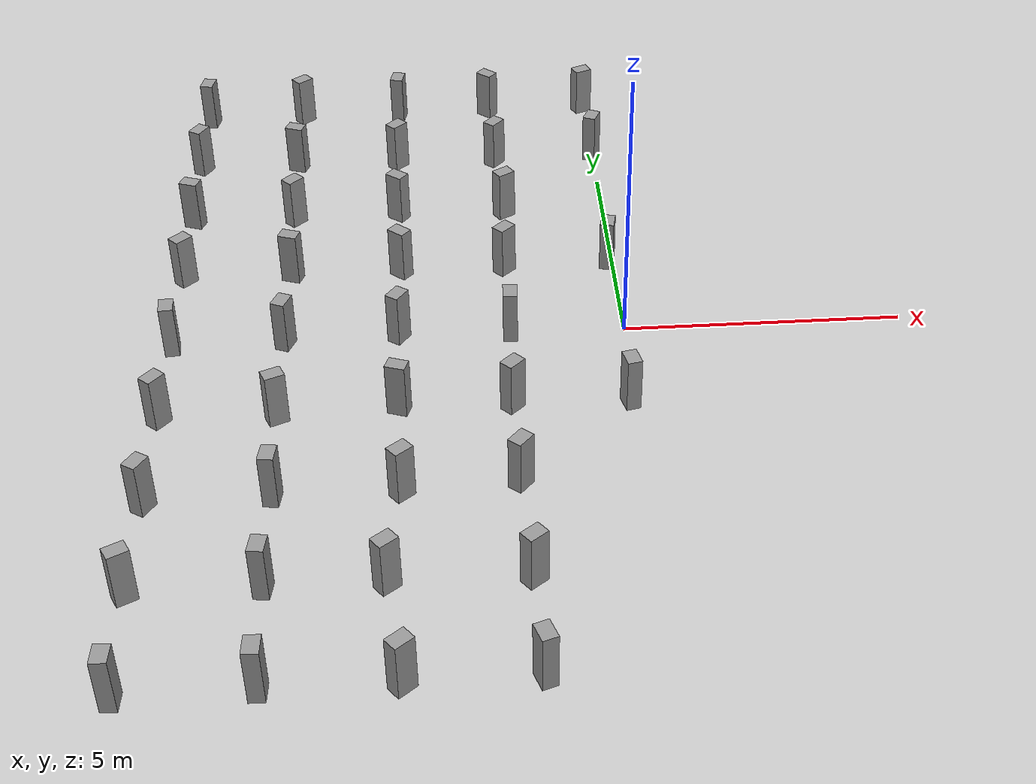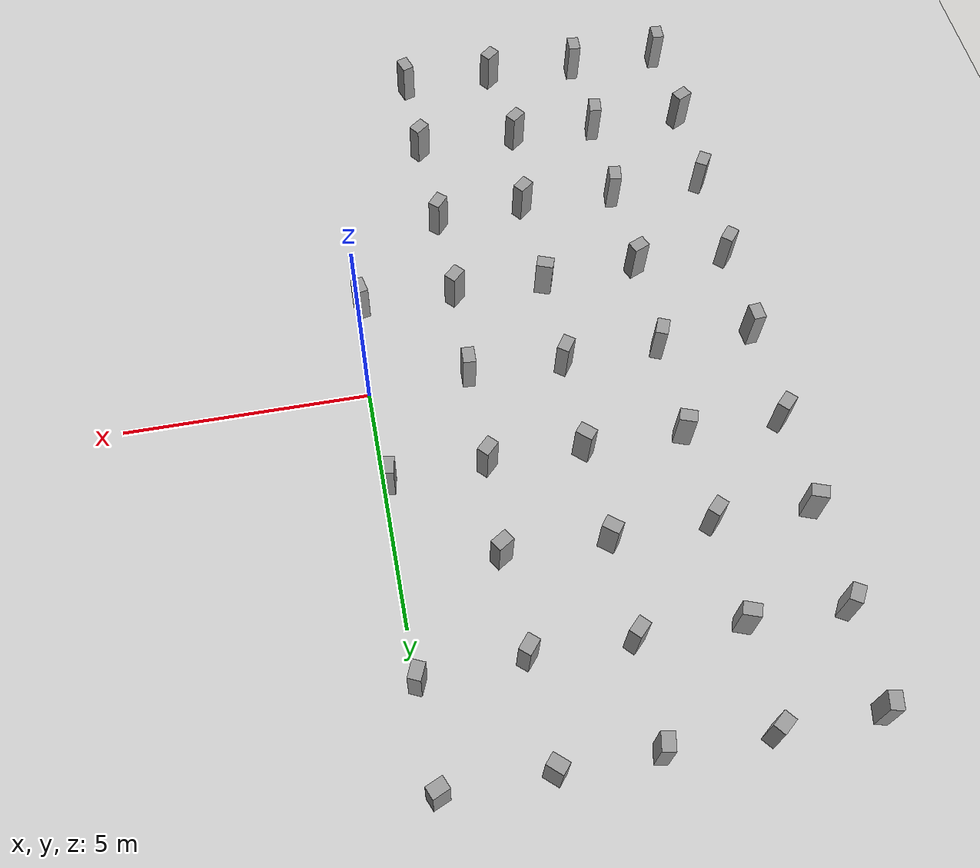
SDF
<sdf version="1.6">
 <world name="default">
  <model name="ground_plane">
   <static>1</static>
   <link name="link">
    <collision name="collision">
     <geometry><plane><normal>0 0 1</normal><size>100 100</size></plane></geometry>
     <surface><friction><ode><mu>100</mu><mu2>50</mu2></ode></friction></surface>
    </collision>
    <visual name="visual">
     <cast_shadows>0</cast_shadows>
     <geometry><plane><normal>0 0 1</normal><size>100 100</size></plane></geometry>
     <material>
      <script><uri>file://media/materials/scripts/gazebo.material</uri><name>Gazebo/Grey</name></script>
     </material>
    </visual>
   </link>
  </model>
  <model name="unit_box_0">
   <pose>-2.06126 2.0132 0.5 -1e-06 2e-06 0.772536</pose>
   <link name="link">
    <inertial>
     <mass>1</mass>
     <inertia>
      <ixx>0.166667</ixx>
      <ixy>0</ixy>
      <ixz>0</ixz>
      <iyy>0.166667</iyy>
      <iyz>0</iyz>
      <izz>0.166667</izz>
     </inertia>
    </inertial>
    <collision name="collision"><geometry><box><size>0.350929 0.254556 1</size></box></geometry></collision>
    <visual name="visual">
     <geometry><box><size>0.350929 0.254556 1</size></box></geometry>
     <material>
      <script><name>Gazebo/Grey</name><uri>file://media/materials/scripts/gazebo.material</uri></script>
     </material>
    </visual>
   </link>
  </model>
  <model name="unit_box_0_clone">
   <pose>-2.05591 -0.03587 0.499999 -3e-06 2e-06 -1.61428</pose>
   <link name="link">
    <inertial>
     <mass>1</mass>
     <inertia>
      <ixx>0.166667</ixx>
      <ixy>0</ixy>
      <ixz>0</ixz>
      <iyy>0.166667</iyy>
      <iyz>0</iyz>
      <izz>0.166667</izz>
     </inertia>
    </inertial>
    <collision name="collision"><geometry><box><size>0.350929 0.254556 1</size></box></geometry></collision>
    <visual name="visual">
     <geometry><box><size>0.350929 0.254556 1</size></box></geometry>
     <material>
      <script><name>Gazebo/Grey</name><uri>file://media/materials/scripts/gazebo.material</uri></script>
     </material>
    </visual>
   </link>
  </model>
  <model name="unit_box_0_clone_0">
   <pose>-2.12172 -2.02535 0.5 0 -2e-06 0.766426</pose>
   <link name="link">
    <inertial>
     <mass>1</mass>
     <inertia>
      <ixx>0.166667</ixx>
      <ixy>0</ixy>
      <ixz>0</ixz>
      <iyy>0.166667</iyy>
      <iyz>0</iyz>
      <izz>0.166667</izz>
     </inertia>
    </inertial>
    <collision name="collision"><geometry><box><size>0.350929 0.254556 1</size></box></geometry></collision>
    <visual name="visual">
     <geometry><box><size>0.350929 0.254556 1</size></box></geometry>
     <material>
      <script><name>Gazebo/Grey</name><uri>file://media/materials/scripts/gazebo.material</uri></script>
     </material>
    </visual>
   </link>
  </model>
  <model name="unit_box_0_clone_1">
   <pose>-0.126811 -2.064 0.499999 1e-06 3e-06 -1.35838</pose>
   <link name="link">
    <inertial>
     <mass>1</mass>
     <inertia>
      <ixx>0.166667</ixx>
      <ixy>0</ixy>
      <ixz>0</ixz>
      <iyy>0.166667</iyy>
      <iyz>0</iyz>
      <izz>0.166667</izz>
     </inertia>
    </inertial>
    <collision name="collision"><geometry><box><size>0.350929 0.254556 1</size></box></geometry></collision>
    <visual name="visual">
     <geometry><box><size>0.350929 0.254556 1</size></box></geometry>
     <material>
      <script><name>Gazebo/Grey</name><uri>file://media/materials/scripts/gazebo.material</uri></script>
     </material>
    </visual>
   </link>
  </model>
  <model name="unit_box_0_clone_5">
   <pose>-0.107164 2.07934 0.5 1e-06 -2e-06 1.37177</pose>
   <link name="link">
    <inertial>
     <mass>1</mass>
     <inertia>
      <ixx>0.166667</ixx>
      <ixy>0</ixy>
      <ixz>0</ixz>
      <iyy>0.166667</iyy>
      <iyz>0</iyz>
      <izz>0.166667</izz>
     </inertia>
    </inertial>
    <collision name="collision"><geometry><box><size>0.350929 0.254556 1</size></box></geometry></collision>
    <visual name="visual">
     <geometry><box><size>0.350929 0.254556 1</size></box></geometry>
     <material>
      <script><name>Gazebo/Grey</name><uri>file://media/materials/scripts/gazebo.material</uri></script>
     </material>
    </visual>
   </link>
  </model>
  <model name="unit_box_0_clone_0_clone">
   <pose>-4.0407 -1.97073 0.5 -1e-06 2e-06 -0.343912</pose>
   <link name="link">
    <inertial>
     <mass>1</mass>
     <inertia>
      <ixx>0.166667</ixx>
      <ixy>0</ixy>
      <ixz>0</ixz>
      <iyy>0.166667</iyy>
      <iyz>0</iyz>
      <izz>0.166667</izz>
     </inertia>
    </inertial>
    <collision name="collision"><geometry><box><size>0.350929 0.254556 1</size></box></geometry></collision>
    <visual name="visual">
     <geometry><box><size>0.350929 0.254556 1</size></box></geometry>
     <material>
      <script><name>Gazebo/Grey</name><uri>file://media/materials/scripts/gazebo.material</uri></script>
     </material>
    </visual>
   </link>
  </model>
  <model name="unit_box_0_clone_0_clone_clone">
   <pose>-4.03905 0.039817 0.5 -1e-06 1e-06 0.948976</pose>
   <link name="link">
    <inertial>
     <mass>1</mass>
     <inertia>
      <ixx>0.166667</ixx>
      <ixy>0</ixy>
      <ixz>0</ixz>
      <iyy>0.166667</iyy>
      <iyz>0</iyz>
      <izz>0.166667</izz>
     </inertia>
    </inertial>
    <collision name="collision"><geometry><box><size>0.350929 0.254556 1</size></box></geometry></collision>
    <visual name="visual">
     <geometry><box><size>0.350929 0.254556 1</size></box></geometry>
     <material>
      <script><name>Gazebo/Grey</name><uri>file://media/materials/scripts/gazebo.material</uri></script>
     </material>
    </visual>
   </link>
  </model>
  <model name="unit_box_0_clone_0_clone_clone_0">
   <pose>-3.99445 2.03442 0.499999 2e-06 -2e-06 -0.719633</pose>
   <link name="link">
    <inertial>
     <mass>1</mass>
     <inertia>
      <ixx>0.166667</ixx>
      <ixy>0</ixy>
      <ixz>0</ixz>
      <iyy>0.166667</iyy>
      <iyz>0</iyz>
      <izz>0.166667</izz>
     </inertia>
    </inertial>
    <collision name="collision"><geometry><box><size>0.350929 0.254556 1</size></box></geometry></collision>
    <visual name="visual">
     <geometry><box><size>0.350929 0.254556 1</size></box></geometry>
     <material>
      <script><name>Gazebo/Grey</name><uri>file://media/materials/scripts/gazebo.material</uri></script>
     </material>
    </visual>
   </link>
  </model>
  <model name="unit_box_0_clone_0_clone_clone_2">
   <pose>-4.04009 4.00348 0.499999 -3e-06 2e-06 -0.67289</pose>
   <link name="link">
    <inertial>
     <mass>1</mass>
     <inertia>
      <ixx>0.166667</ixx>
      <ixy>0</ixy>
      <ixz>0</ixz>
      <iyy>0.166667</iyy>
      <iyz>0</iyz>
      <izz>0.166667</izz>
     </inertia>
    </inertial>
    <collision name="collision"><geometry><box><size>0.350929 0.254556 1</size></box></geometry></collision>
    <visual name="visual">
     <geometry><box><size>0.350929 0.254556 1</size></box></geometry>
     <material>
      <script><name>Gazebo/Grey</name><uri>file://media/materials/scripts/gazebo.material</uri></script>
     </material>
    </visual>
   </link>
  </model>
  <model name="unit_box_0_clone_0_clone_clone_3">
   <pose>-1.96683 3.94969 0.499999 2e-06 2e-06 0.554806</pose>
   <link name="link">
    <inertial>
     <mass>1</mass>
     <inertia>
      <ixx>0.166667</ixx>
      <ixy>0</ixy>
      <ixz>0</ixz>
      <iyy>0.166667</iyy>
      <iyz>0</iyz>
      <izz>0.166667</izz>
     </inertia>
    </inertial>
    <collision name="collision"><geometry><box><size>0.350929 0.254556 1</size></box></geometry></collision>
    <visual name="visual">
     <geometry><box><size>0.350929 0.254556 1</size></box></geometry>
     <material>
      <script><name>Gazebo/Grey</name><uri>file://media/materials/scripts/gazebo.material</uri></script>
     </material>
    </visual>
   </link>
  </model>
  <model name="unit_box_0_clone_0_clone_clone_7">
   <pose>-3.99587 -4.06663 0.5 0 2e-06 0.673963</pose>
   <link name="link">
    <inertial>
     <mass>1</mass>
     <inertia>
      <ixx>0.166667</ixx>
      <ixy>0</ixy>
      <ixz>0</ixz>
      <iyy>0.166667</iyy>
      <iyz>0</iyz>
      <izz>0.166667</izz>
     </inertia>
    </inertial>
    <collision name="collision"><geometry><box><size>0.350929 0.254556 1</size></box></geometry></collision>
    <visual name="visual">
     <geometry><box><size>0.350929 0.254556 1</size></box></geometry>
     <material>
      <script><name>Gazebo/Grey</name><uri>file://media/materials/scripts/gazebo.material</uri></script>
     </material>
    </visual>
   </link>
  </model>
  <model name="unit_box_0_clone_0_clone_clone_8">
   <pose>-2.09802 -3.96334 0.5 -1e-06 1e-06 0.856131</pose>
   <link name="link">
    <inertial>
     <mass>1</mass>
     <inertia>
      <ixx>0.166667</ixx>
      <ixy>0</ixy>
      <ixz>0</ixz>
      <iyy>0.166667</iyy>
      <iyz>0</iyz>
      <izz>0.166667</izz>
     </inertia>
    </inertial>
    <collision name="collision"><geometry><box><size>0.350929 0.254556 1</size></box></geometry></collision>
    <visual name="visual">
     <geometry><box><size>0.350929 0.254556 1</size></box></geometry>
     <material>
      <script><name>Gazebo/Grey</name><uri>file://media/materials/scripts/gazebo.material</uri></script>
     </material>
    </visual>
   </link>
  </model>
  <model name="unit_box_0_clone_0_clone_clone_13">
   <pose>-2.02858 -6.08392 0.5 0 -2e-06 0.653948</pose>
   <link name="link">
    <inertial>
     <mass>1</mass>
     <inertia>
      <ixx>0.166667</ixx>
      <ixy>0</ixy>
      <ixz>0</ixz>
      <iyy>0.166667</iyy>
      <iyz>0</iyz>
      <izz>0.166667</izz>
     </inertia>
    </inertial>
    <collision name="collision"><geometry><box><size>0.350929 0.254556 1</size></box></geometry></collision>
    <visual name="visual">
     <geometry><box><size>0.350929 0.254556 1</size></box></geometry>
     <material>
      <script><name>Gazebo/Grey</name><uri>file://media/materials/scripts/gazebo.material</uri></script>
     </material>
    </visual>
   </link>
  </model>
  <model name="unit_box_0_clone_0_clone_clone_11_clone_0">
   <pose>-6.05663 -6.01449 0.5 1e-06 -2e-06 1.42927</pose>
   <link name="link">
    <inertial>
     <mass>1</mass>
     <inertia>
      <ixx>0.166667</ixx>
      <ixy>0</ixy>
      <ixz>0</ixz>
      <iyy>0.166667</iyy>
      <iyz>0</iyz>
      <izz>0.166667</izz>
     </inertia>
    </inertial>
    <collision name="collision"><geometry><box><size>0.350929 0.254556 1</size></box></geometry></collision>
    <visual name="visual">
     <geometry><box><size>0.350929 0.254556 1</size></box></geometry>
     <material>
      <script><name>Gazebo/Grey</name><uri>file://media/materials/scripts/gazebo.material</uri></script>
     </material>
    </visual>
   </link>
  </model>
  <model name="unit_box_0_clone_0_clone_clone_10_clone">
   <pose>-0.034356 6.04421 0.499999 -2e-06 2e-06 1.16006</pose>
   <link name="link">
    <inertial>
     <mass>1</mass>
     <inertia>
      <ixx>0.166667</ixx>
      <ixy>0</ixy>
      <ixz>0</ixz>
      <iyy>0.166667</iyy>
      <iyz>0</iyz>
      <izz>0.166667</izz>
     </inertia>
    </inertial>
    <collision name="collision"><geometry><box><size>0.350929 0.254556 1</size></box></geometry></collision>
    <visual name="visual">
     <geometry><box><size>0.350929 0.254556 1</size></box></geometry>
     <material>
      <script><name>Gazebo/Grey</name><uri>file://media/materials/scripts/gazebo.material</uri></script>
     </material>
    </visual>
   </link>
  </model>
  <model name="unit_box_0_clone_0_clone_clone_8_clone_0">
   <pose>-2.0601 5.93381 0.5 1e-06 -2e-06 0.856199</pose>
   <link name="link">
    <inertial>
     <mass>1</mass>
     <inertia>
      <ixx>0.166667</ixx>
      <ixy>0</ixy>
      <ixz>0</ixz>
      <iyy>0.166667</iyy>
      <iyz>0</iyz>
      <izz>0.166667</izz>
     </inertia>
    </inertial>
    <collision name="collision"><geometry><box><size>0.350929 0.254556 1</size></box></geometry></collision>
    <visual name="visual">
     <geometry><box><size>0.350929 0.254556 1</size></box></geometry>
     <material>
      <script><name>Gazebo/Grey</name><uri>file://media/materials/scripts/gazebo.material</uri></script>
     </material>
    </visual>
   </link>
  </model>
  <model name="unit_box_0_clone_0_clone_2">
   <pose>-4.0507 5.96912 0.5 2e-06 -1e-06 0.766392</pose>
   <link name="link">
    <inertial>
     <mass>1</mass>
     <inertia>
      <ixx>0.166667</ixx>
      <ixy>0</ixy>
      <ixz>0</ixz>
      <iyy>0.166667</iyy>
      <iyz>0</iyz>
      <izz>0.166667</izz>
     </inertia>
    </inertial>
    <collision name="collision"><geometry><box><size>0.350929 0.254556 1</size></box></geometry></collision>
    <visual name="visual">
     <geometry><box><size>0.350929 0.254556 1</size></box></geometry>
     <material>
      <script><name>Gazebo/Grey</name><uri>file://media/materials/scripts/gazebo.material</uri></script>
     </material>
    </visual>
   </link>
  </model>
  <model name="unit_box_0_clone_0_clone_clone_15_clone">
   <pose>-6.09579 6.00418 0.499999 1e-06 -3e-06 -0.343825</pose>
   <link name="link">
    <inertial>
     <mass>1</mass>
     <inertia>
      <ixx>0.166667</ixx>
      <ixy>0</ixy>
      <ixz>0</ixz>
      <iyy>0.166667</iyy>
      <iyz>0</iyz>
      <izz>0.166667</izz>
     </inertia>
    </inertial>
    <collision name="collision"><geometry><box><size>0.350929 0.254556 1</size></box></geometry></collision>
    <visual name="visual">
     <geometry><box><size>0.350929 0.254556 1</size></box></geometry>
     <material>
      <script><name>Gazebo/Grey</name><uri>file://media/materials/scripts/gazebo.material</uri></script>
     </material>
    </visual>
   </link>
  </model>
  <model name="unit_box_0_clone_8">
   <pose>-6.05766 3.97861 0.5 -1e-06 -2e-06 0.772575</pose>
   <link name="link">
    <inertial>
     <mass>1</mass>
     <inertia>
      <ixx>0.166667</ixx>
      <ixy>0</ixy>
      <ixz>0</ixz>
      <iyy>0.166667</iyy>
      <iyz>0</iyz>
      <izz>0.166667</izz>
     </inertia>
    </inertial>
    <collision name="collision"><geometry><box><size>0.350929 0.254556 1</size></box></geometry></collision>
    <visual name="visual">
     <geometry><box><size>0.350929 0.254556 1</size></box></geometry>
     <material>
      <script><name>Gazebo/Grey</name><uri>file://media/materials/scripts/gazebo.material</uri></script>
     </material>
    </visual>
   </link>
  </model>
  <model name="unit_box_0_clone_0_clone_clone_4_clone">
   <pose>-6.02399 2.04626 0.5 -1e-06 1e-06 -0.34383</pose>
   <link name="link">
    <inertial>
     <mass>1</mass>
     <inertia>
      <ixx>0.166667</ixx>
      <ixy>0</ixy>
      <ixz>0</ixz>
      <iyy>0.166667</iyy>
      <iyz>0</iyz>
      <izz>0.166667</izz>
     </inertia>
    </inertial>
    <collision name="collision"><geometry><box><size>0.350929 0.254556 1</size></box></geometry></collision>
    <visual name="visual">
     <geometry><box><size>0.350929 0.254556 1</size></box></geometry>
     <material>
      <script><name>Gazebo/Grey</name><uri>file://media/materials/scripts/gazebo.material</uri></script>
     </material>
    </visual>
   </link>
  </model>
  <model name="unit_box_0_clone_4_clone">
   <pose>-6.05266 -0.012394 0.5 1e-06 -2e-06 1.17598</pose>
   <link name="link">
    <inertial>
     <mass>1</mass>
     <inertia>
      <ixx>0.166667</ixx>
      <ixy>0</ixy>
      <ixz>0</ixz>
      <iyy>0.166667</iyy>
      <iyz>0</iyz>
      <izz>0.166667</izz>
     </inertia>
    </inertial>
    <collision name="collision"><geometry><box><size>0.350929 0.254556 1</size></box></geometry></collision>
    <visual name="visual">
     <geometry><box><size>0.350929 0.254556 1</size></box></geometry>
     <material>
      <script><name>Gazebo/Grey</name><uri>file://media/materials/scripts/gazebo.material</uri></script>
     </material>
    </visual>
   </link>
  </model>
  <model name="unit_box_0_clone_0_clone_clone_5_clone">
   <pose>-6.08131 -2.07249 0.5 2e-06 1e-06 0.401994</pose>
   <link name="link">
    <inertial>
     <mass>1</mass>
     <inertia>
      <ixx>0.166667</ixx>
      <ixy>0</ixy>
      <ixz>0</ixz>
      <iyy>0.166667</iyy>
      <iyz>0</iyz>
      <izz>0.166667</izz>
     </inertia>
    </inertial>
    <collision name="collision"><geometry><box><size>0.350929 0.254556 1</size></box></geometry></collision>
    <visual name="visual">
     <geometry><box><size>0.350929 0.254556 1</size></box></geometry>
     <material>
      <script><name>Gazebo/Grey</name><uri>file://media/materials/scripts/gazebo.material</uri></script>
     </material>
    </visual>
   </link>
  </model>
  <model name="unit_box_0_clone_0_clone_clone_11_clone_1">
   <pose>-6.03872 -4.03197 0.499999 1e-06 -3e-06 1.42935</pose>
   <link name="link">
    <inertial>
     <mass>1</mass>
     <inertia>
      <ixx>0.166667</ixx>
      <ixy>0</ixy>
      <ixz>0</ixz>
      <iyy>0.166667</iyy>
      <iyz>0</iyz>
      <izz>0.166667</izz>
     </inertia>
    </inertial>
    <collision name="collision"><geometry><box><size>0.350929 0.254556 1</size></box></geometry></collision>
    <visual name="visual">
     <geometry><box><size>0.350929 0.254556 1</size></box></geometry>
     <material>
      <script><name>Gazebo/Grey</name><uri>file://media/materials/scripts/gazebo.material</uri></script>
     </material>
    </visual>
   </link>
  </model>
  <model name="unit_box_0_clone_clone_0">
   <pose>-8.02031 -7.97952 0.499999 2e-06 2e-06 -1.6143</pose>
   <link name="link">
    <inertial>
     <mass>1</mass>
     <inertia>
      <ixx>0.166667</ixx>
      <ixy>0</ixy>
      <ixz>0</ixz>
      <iyy>0.166667</iyy>
      <iyz>0</iyz>
      <izz>0.166667</izz>
     </inertia>
    </inertial>
    <collision name="collision"><geometry><box><size>0.350929 0.254556 1</size></box></geometry></collision>
    <visual name="visual">
     <geometry><box><size>0.350929 0.254556 1</size></box></geometry>
     <material>
      <script><name>Gazebo/Grey</name><uri>file://media/materials/scripts/gazebo.material</uri></script>
     </material>
    </visual>
   </link>
  </model>
  <model name="unit_box_0_clone_2_clone">
   <pose>-8.0886 -6.0066 0.499999 -2e-06 -2e-06 0.477391</pose>
   <link name="link">
    <inertial>
     <mass>1</mass>
     <inertia>
      <ixx>0.166667</ixx>
      <ixy>0</ixy>
      <ixz>0</ixz>
      <iyy>0.166667</iyy>
      <iyz>0</iyz>
      <izz>0.166667</izz>
     </inertia>
    </inertial>
    <collision name="collision"><geometry><box><size>0.350929 0.254556 1</size></box></geometry></collision>
    <visual name="visual">
     <geometry><box><size>0.350929 0.254556 1</size></box></geometry>
     <material>
      <script><name>Gazebo/Grey</name><uri>file://media/materials/scripts/gazebo.material</uri></script>
     </material>
    </visual>
   </link>
  </model>
  <model name="unit_box_0_clone_0_clone_clone_9_clone">
   <pose>-8.05385 -4.0771 0.499999 1e-06 -3e-06 0.998531</pose>
   <link name="link">
    <inertial>
     <mass>1</mass>
     <inertia>
      <ixx>0.166667</ixx>
      <ixy>0</ixy>
      <ixz>0</ixz>
      <iyy>0.166667</iyy>
      <iyz>0</iyz>
      <izz>0.166667</izz>
     </inertia>
    </inertial>
    <collision name="collision"><geometry><box><size>0.350929 0.254556 1</size></box></geometry></collision>
    <visual name="visual">
     <geometry><box><size>0.350929 0.254556 1</size></box></geometry>
     <material>
      <script><name>Gazebo/Grey</name><uri>file://media/materials/scripts/gazebo.material</uri></script>
     </material>
    </visual>
   </link>
  </model>
  <model name="unit_box_0_clone_0_clone_clone_8_clone_1">
   <pose>-8.04948 -2.00245 0.499999 -3e-06 -2e-06 0.856223</pose>
   <link name="link">
    <inertial>
     <mass>1</mass>
     <inertia>
      <ixx>0.166667</ixx>
      <ixy>0</ixy>
      <ixz>0</ixz>
      <iyy>0.166667</iyy>
      <iyz>0</iyz>
      <izz>0.166667</izz>
     </inertia>
    </inertial>
    <collision name="collision"><geometry><box><size>0.350929 0.254556 1</size></box></geometry></collision>
    <visual name="visual">
     <geometry><box><size>0.350929 0.254556 1</size></box></geometry>
     <material>
      <script><name>Gazebo/Grey</name><uri>file://media/materials/scripts/gazebo.material</uri></script>
     </material>
    </visual>
   </link>
  </model>
  <model name="unit_box_0_clone_3_clone">
   <pose>-8.04135 -0.027247 0.499999 -1e-06 -3e-06 -1.4805</pose>
   <link name="link">
    <inertial>
     <mass>1</mass>
     <inertia>
      <ixx>0.166667</ixx>
      <ixy>0</ixy>
      <ixz>0</ixz>
      <iyy>0.166667</iyy>
      <iyz>0</iyz>
      <izz>0.166667</izz>
     </inertia>
    </inertial>
    <collision name="collision"><geometry><box><size>0.350929 0.254556 1</size></box></geometry></collision>
    <visual name="visual">
     <geometry><box><size>0.350929 0.254556 1</size></box></geometry>
     <material>
      <script><name>Gazebo/Grey</name><uri>file://media/materials/scripts/gazebo.material</uri></script>
     </material>
    </visual>
   </link>
  </model>
  <model name="unit_box_0_clone_0_clone_3">
   <pose>-8.01258 2.0706 0.5 2e-06 -1e-06 0.766476</pose>
   <link name="link">
    <inertial>
     <mass>1</mass>
     <inertia>
      <ixx>0.166667</ixx>
      <ixy>0</ixy>
      <ixz>0</ixz>
      <iyy>0.166667</iyy>
      <iyz>0</iyz>
      <izz>0.166667</izz>
     </inertia>
    </inertial>
    <collision name="collision"><geometry><box><size>0.350929 0.254556 1</size></box></geometry></collision>
    <visual name="visual">
     <geometry><box><size>0.350929 0.254556 1</size></box></geometry>
     <material>
      <script><name>Gazebo/Grey</name><uri>file://media/materials/scripts/gazebo.material</uri></script>
     </material>
    </visual>
   </link>
  </model>
  <model name="unit_box_0_clone_0_clone_clone_17">
   <pose>-8.02954 4.01791 0.5 -1e-06 2e-06 -0.343958</pose>
   <link name="link">
    <inertial>
     <mass>1</mass>
     <inertia>
      <ixx>0.166667</ixx>
      <ixy>0</ixy>
      <ixz>0</ixz>
      <iyy>0.166667</iyy>
      <iyz>0</iyz>
      <izz>0.166667</izz>
     </inertia>
    </inertial>
    <collision name="collision"><geometry><box><size>0.350929 0.254556 1</size></box></geometry></collision>
    <visual name="visual">
     <geometry><box><size>0.350929 0.254556 1</size></box></geometry>
     <material>
      <script><name>Gazebo/Grey</name><uri>file://media/materials/scripts/gazebo.material</uri></script>
     </material>
    </visual>
   </link>
  </model>
  <model name="unit_box_0_clone_0_clone_1_clone">
   <pose>-8.04903 6.0384 0.5 2e-06 -1e-06 1.03369</pose>
   <link name="link">
    <inertial>
     <mass>1</mass>
     <inertia>
      <ixx>0.166667</ixx>
      <ixy>0</ixy>
      <ixz>0</ixz>
      <iyy>0.166667</iyy>
      <iyz>0</iyz>
      <izz>0.166667</izz>
     </inertia>
    </inertial>
    <collision name="collision"><geometry><box><size>0.350929 0.254556 1</size></box></geometry></collision>
    <visual name="visual">
     <geometry><box><size>0.350929 0.254556 1</size></box></geometry>
     <material>
      <script><name>Gazebo/Grey</name><uri>file://media/materials/scripts/gazebo.material</uri></script>
     </material>
    </visual>
   </link>
  </model>
  <model name="unit_box_0_clone_0_clone_clone_14_clone">
   <pose>-8.04004 7.98435 0.5 -1e-06 1e-06 1.37202</pose>
   <link name="link">
    <inertial>
     <mass>1</mass>
     <inertia>
      <ixx>0.166667</ixx>
      <ixy>0</ixy>
      <ixz>0</ixz>
      <iyy>0.166667</iyy>
      <iyz>0</iyz>
      <izz>0.166667</izz>
     </inertia>
    </inertial>
    <collision name="collision"><geometry><box><size>0.350929 0.254556 1</size></box></geometry></collision>
    <visual name="visual">
     <geometry><box><size>0.350929 0.254556 1</size></box></geometry>
     <material>
      <script><name>Gazebo/Grey</name><uri>file://media/materials/scripts/gazebo.material</uri></script>
     </material>
    </visual>
   </link>
  </model>
  <model name="unit_box_0_clone_0_clone_clone_7_clone">
   <pose>-6.05556 8.01606 0.5 2e-06 1e-06 0.674019</pose>
   <link name="link">
    <inertial>
     <mass>1</mass>
     <inertia>
      <ixx>0.166667</ixx>
      <ixy>0</ixy>
      <ixz>0</ixz>
      <iyy>0.166667</iyy>
      <iyz>0</iyz>
      <izz>0.166667</izz>
     </inertia>
    </inertial>
    <collision name="collision"><geometry><box><size>0.350929 0.254556 1</size></box></geometry></collision>
    <visual name="visual">
     <geometry><box><size>0.350929 0.254556 1</size></box></geometry>
     <material>
      <script><name>Gazebo/Grey</name><uri>file://media/materials/scripts/gazebo.material</uri></script>
     </material>
    </visual>
   </link>
  </model>
  <model name="unit_box_0_clone_5_clone_0">
   <pose>-4.0227 7.97562 0.499999 3e-06 -2e-06 1.37163</pose>
   <link name="link">
    <inertial>
     <mass>1</mass>
     <inertia>
      <ixx>0.166667</ixx>
      <ixy>0</ixy>
      <ixz>0</ixz>
      <iyy>0.166667</iyy>
      <iyz>0</iyz>
      <izz>0.166667</izz>
     </inertia>
    </inertial>
    <collision name="collision"><geometry><box><size>0.350929 0.254556 1</size></box></geometry></collision>
    <visual name="visual">
     <geometry><box><size>0.350929 0.254556 1</size></box></geometry>
     <material>
      <script><name>Gazebo/Grey</name><uri>file://media/materials/scripts/gazebo.material</uri></script>
     </material>
    </visual>
   </link>
  </model>
  <model name="unit_box_0_clone_0_clone_clone_0_clone">
   <pose>-2.1188 8.00665 0.499999 -3e-06 2e-06 -0.719618</pose>
   <link name="link">
    <inertial>
     <mass>1</mass>
     <inertia>
      <ixx>0.166667</ixx>
      <ixy>0</ixy>
      <ixz>0</ixz>
      <iyy>0.166667</iyy>
      <iyz>0</iyz>
      <izz>0.166667</izz>
     </inertia>
    </inertial>
    <collision name="collision"><geometry><box><size>0.350929 0.254556 1</size></box></geometry></collision>
    <visual name="visual">
     <geometry><box><size>0.350929 0.254556 1</size></box></geometry>
     <material>
      <script><name>Gazebo/Grey</name><uri>file://media/materials/scripts/gazebo.material</uri></script>
     </material>
    </visual>
   </link>
  </model>
  <model name="unit_box_0_clone_0_clone_clone_5_clone_clone">
   <pose>-0.073561 8.03968 0.5 -1e-06 -2e-06 0.402038</pose>
   <link name="link">
    <inertial>
     <mass>1</mass>
     <inertia>
      <ixx>0.166667</ixx>
      <ixy>0</ixy>
      <ixz>0</ixz>
      <iyy>0.166667</iyy>
      <iyz>0</iyz>
      <izz>0.166667</izz>
     </inertia>
    </inertial>
    <collision name="collision"><geometry><box><size>0.350929 0.254556 1</size></box></geometry></collision>
    <visual name="visual">
     <geometry><box><size>0.350929 0.254556 1</size></box></geometry>
     <material>
      <script><name>Gazebo/Grey</name><uri>file://media/materials/scripts/gazebo.material</uri></script>
     </material>
    </visual>
   </link>
  </model>
  <model name="unit_box_0_clone_0_clone_clone_1_clone">
   <pose>-2 -8 0.499999 3e-06 2e-06 -1.24424</pose>
   <link name="link">
    <inertial>
     <mass>1</mass>
     <inertia>
      <ixx>0.166667</ixx>
      <ixy>0</ixy>
      <ixz>0</ixz>
      <iyy>0.166667</iyy>
      <iyz>0</iyz>
      <izz>0.166667</izz>
     </inertia>
    </inertial>
    <collision name="collision"><geometry><box><size>0.350929 0.254556 1</size></box></geometry></collision>
    <visual name="visual">
     <geometry><box><size>0.350929 0.254556 1</size></box></geometry>
     <material>
      <script><name>Gazebo/Grey</name><uri>file://media/materials/scripts/gazebo.material</uri></script>
     </material>
    </visual>
   </link>
  </model>
  <model name="unit_box_0_clone_0_clone_clone_7_clone_1">
   <pose>-4 -8 0.5 -1e-06 -2e-06 0.673918</pose>
   <link name="link">
    <inertial>
     <mass>1</mass>
     <inertia>
      <ixx>0.166667</ixx>
      <ixy>0</ixy>
      <ixz>0</ixz>
      <iyy>0.166667</iyy>
      <iyz>0</iyz>
      <izz>0.166667</izz>
     </inertia>
    </inertial>
    <collision name="collision"><geometry><box><size>0.350929 0.254556 1</size></box></geometry></collision>
    <visual name="visual">
     <geometry><box><size>0.350929 0.254556 1</size></box></geometry>
     <material>
      <script><name>Gazebo/Grey</name><uri>file://media/materials/scripts/gazebo.material</uri></script>
     </material>
    </visual>
   </link>
  </model>
  <model name="unit_box_0_clone_clone_clone">
   <pose>-6.00229 -7.95876 0.5 -1e-06 -1e-06 -1.61403</pose>
   <link name="link">
    <inertial>
     <mass>1</mass>
     <inertia>
      <ixx>0.166667</ixx>
      <ixy>0</ixy>
      <ixz>0</ixz>
      <iyy>0.166667</iyy>
      <iyz>0</iyz>
      <izz>0.166667</izz>
     </inertia>
    </inertial>
    <collision name="collision"><geometry><box><size>0.350929 0.254556 1</size></box></geometry></collision>
    <visual name="visual">
     <geometry><box><size>0.350929 0.254556 1</size></box></geometry>
     <material>
      <script><name>Gazebo/Grey</name><uri>file://media/materials/scripts/gazebo.material</uri></script>
     </material>
    </visual>
   </link>
  </model>
  <model name="unit_box_0_clone_0_clone_clone_13_clone">
   <pose>-4.22036 -6.05058 0.5 1e-06 2e-06 0.653947</pose>
   <link name="link">
    <inertial>
     <mass>1</mass>
     <inertia>
      <ixx>0.166667</ixx>
      <ixy>0</ixy>
      <ixz>0</ixz>
      <iyy>0.166667</iyy>
      <iyz>0</iyz>
      <izz>0.166667</izz>
     </inertia>
    </inertial>
    <collision name="collision"><geometry><box><size>0.350929 0.254556 1</size></box></geometry></collision>
    <visual name="visual">
     <geometry><box><size>0.350929 0.254556 1</size></box></geometry>
     <material>
      <script><name>Gazebo/Grey</name><uri>file://media/materials/scripts/gazebo.material</uri></script>
     </material>
    </visual>
   </link>
  </model>
 </world>
</sdf>
